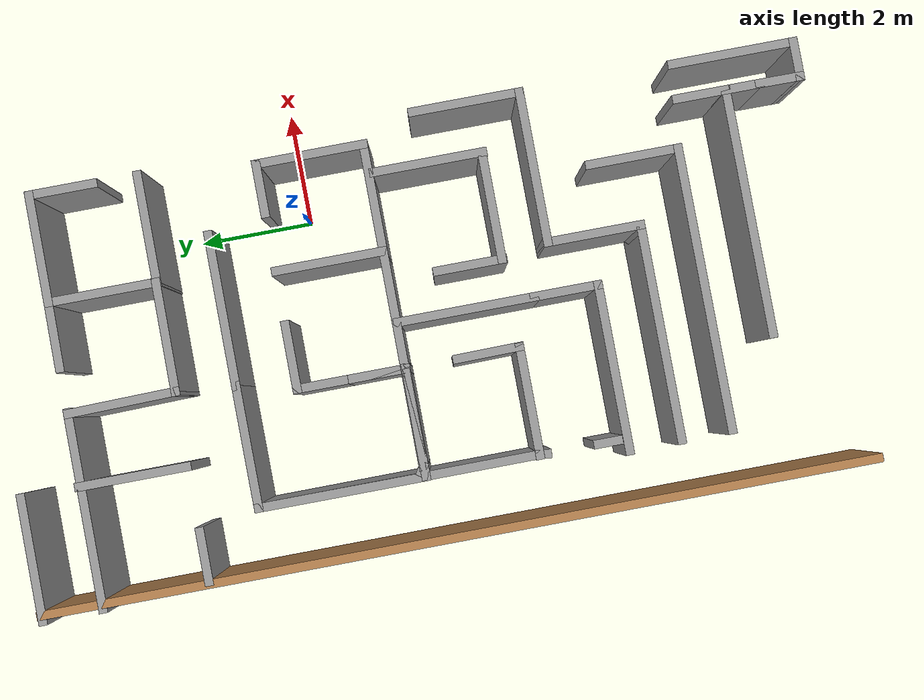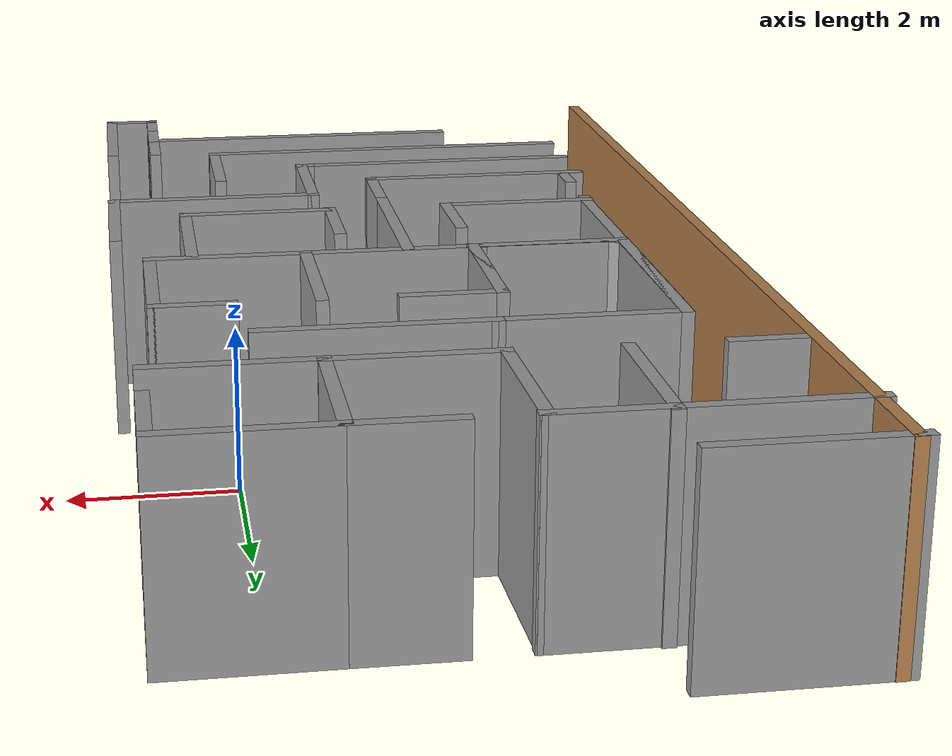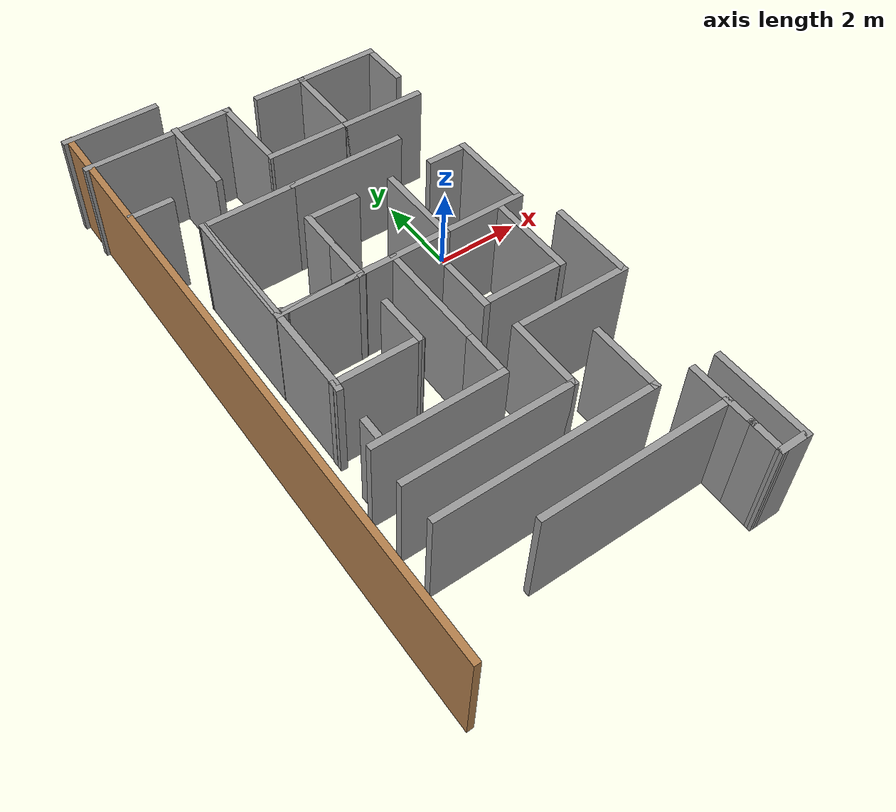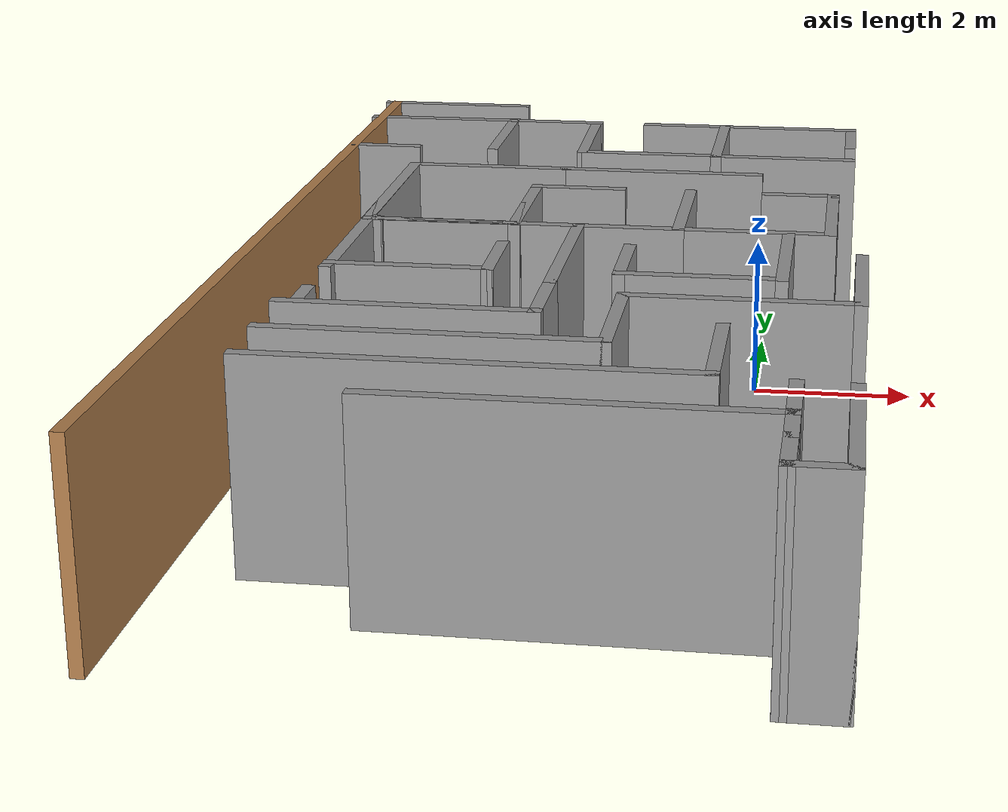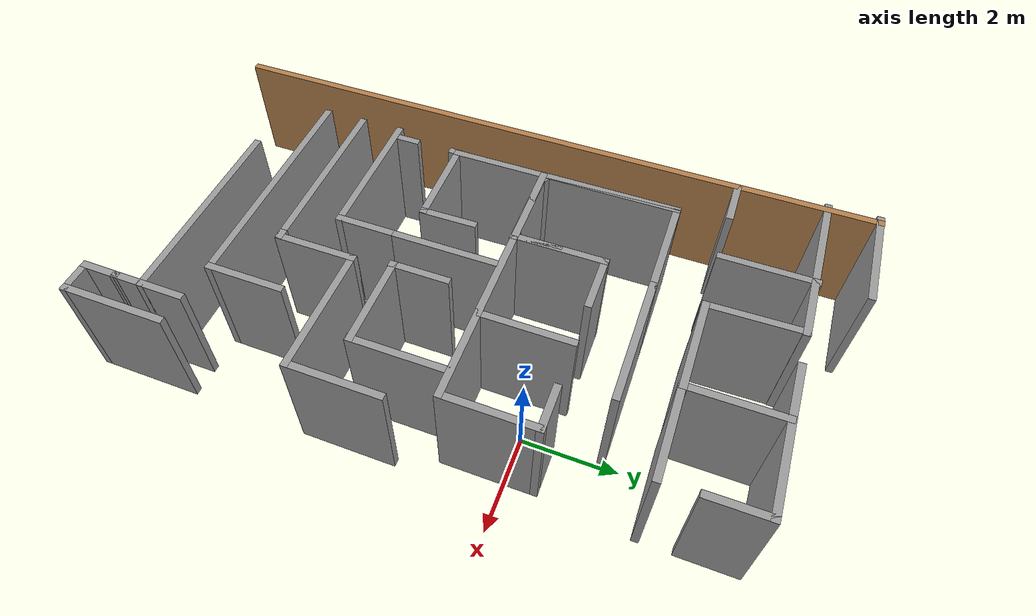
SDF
<sdf version="1.7">
 <model name="nidar1">
  <pose>1.48392 -1.60733 0 0 -0 0</pose>
  <link name="Wall_100">
   <collision name="Wall_100_Collision">
    <geometry><box><size>1.25 0.15 2.5</size></box></geometry>
    <pose>0 0 1.25 0 -0 0</pose>
   </collision>
   <visual name="Wall_100_Visual">
    <pose>0 0 1.25 0 -0 0</pose>
    <geometry><box><size>1.25 0.15 2.5</size></box></geometry>
    <material>
     <script><uri>file://media/materials/scripts/gazebo.material</uri><name>Gazebo/Grey</name></script>
     <ambient>1 1 1 1</ambient>
    </material>
    <meta><layer>0</layer></meta>
   </visual>
   <pose>-3.64531 -2.55736 0 0 -0 -1.5708</pose>
  </link>
  <link name="Wall_101">
   <collision name="Wall_101_Collision">
    <geometry><box><size>3 0.15 2.5</size></box></geometry>
    <pose>0 0 1.25 0 -0 0</pose>
   </collision>
   <visual name="Wall_101_Visual">
    <pose>0 0 1.25 0 -0 0</pose>
    <geometry><box><size>3 0.15 2.5</size></box></geometry>
    <material>
     <script><uri>file://media/materials/scripts/gazebo.material</uri><name>Gazebo/Grey</name></script>
     <ambient>1 1 1 1</ambient>
    </material>
    <meta><layer>0</layer></meta>
   </visual>
   <pose>-5.07031 -3.10737 0 0 -0 3.14159</pose>
  </link>
  <link name="Wall_104">
   <collision name="Wall_104_Collision">
    <geometry><box><size>2.75 0.15 2.5</size></box></geometry>
    <pose>0 0 1.25 0 -0 0</pose>
   </collision>
   <visual name="Wall_104_Visual">
    <pose>0 0 1.25 0 -0 0</pose>
    <geometry><box><size>2.75 0.15 2.5</size></box></geometry>
    <material>
     <script><uri>file://media/materials/scripts/gazebo.material</uri><name>Gazebo/Grey</name></script>
     <ambient>1 1 1 1</ambient>
    </material>
    <meta><layer>0</layer></meta>
   </visual>
   <pose>-2.90001 3.22586 0 0 -0 0</pose>
  </link>
  <link name="Wall_121">
   <collision name="Wall_121_Collision">
    <geometry><box><size>3.75 0.15 2.5</size></box></geometry>
    <pose>0 0 1.25 0 -0 0</pose>
   </collision>
   <visual name="Wall_121_Visual">
    <pose>0 0 1.25 0 -0 0</pose>
    <geometry><box><size>3.75 0.15 2.5</size></box></geometry>
    <material>
     <script><uri>file://media/materials/scripts/gazebo.material</uri><name>Gazebo/Grey</name></script>
     <ambient>1 1 1 1</ambient>
    </material>
    <meta><layer>0</layer></meta>
   </visual>
   <pose>-4.67849 -4.00366 0 0 -0 0</pose>
  </link>
  <link name="Wall_122">
   <collision name="Wall_122_Collision">
    <geometry><box><size>0.25 0.15 2.5</size></box></geometry>
    <pose>0 0 1.25 0 -0 0</pose>
   </collision>
   <visual name="Wall_122_Visual">
    <pose>0 0 1.25 0 -0 0</pose>
    <geometry><box><size>0.25 0.15 2.5</size></box></geometry>
    <material>
     <script><uri>file://media/materials/scripts/gazebo.material</uri><name>Gazebo/Grey</name></script>
     <ambient>1 1 1 1</ambient>
    </material>
    <meta><layer>0</layer></meta>
   </visual>
   <pose>-2.82849 -4.00366 0 0 -0 0</pose>
  </link>
  <link name="Wall_123">
   <collision name="Wall_123_Collision">
    <geometry><box><size>1.75 0.15 2.5</size></box></geometry>
    <pose>0 0 1.25 0 -0 0</pose>
   </collision>
   <visual name="Wall_123_Visual">
    <pose>0 0 1.25 0 -0 0</pose>
    <geometry><box><size>1.75 0.15 2.5</size></box></geometry>
    <material>
     <script><uri>file://media/materials/scripts/gazebo.material</uri><name>Gazebo/Grey</name></script>
     <ambient>1 1 1 1</ambient>
    </material>
    <meta><layer>0</layer></meta>
   </visual>
   <pose>-2.77849 -3.20366 0 0 -0 1.5708</pose>
  </link>
  <link name="Wall_124">
   <collision name="Wall_124_Collision">
    <geometry><box><size>2.75 0.15 2.5</size></box></geometry>
    <pose>0 0 1.25 0 -0 0</pose>
   </collision>
   <visual name="Wall_124_Visual">
    <pose>0 0 1.25 0 -0 0</pose>
    <geometry><box><size>2.75 0.15 2.5</size></box></geometry>
    <material>
     <script><uri>file://media/materials/scripts/gazebo.material</uri><name>Gazebo/Grey</name></script>
     <ambient>1 1 1 1</ambient>
    </material>
    <meta><layer>0</layer></meta>
   </visual>
   <pose>-1.47849 -2.40366 0 0 -0 0</pose>
  </link>
  <link name="Wall_125">
   <collision name="Wall_125_Collision">
    <geometry><box><size>2 0.15 2.5</size></box></geometry>
    <pose>0 0 1.25 0 -0 0</pose>
   </collision>
   <visual name="Wall_125_Visual">
    <pose>0 0 1.25 0 -0 0</pose>
    <geometry><box><size>2 0.15 2.5</size></box></geometry>
    <material>
     <script><uri>file://media/materials/scripts/gazebo.material</uri><name>Gazebo/Grey</name></script>
     <ambient>1 1 1 1</ambient>
    </material>
    <meta><layer>0</layer></meta>
   </visual>
   <pose>-0.178487 -1.47866 0 0 -0 1.5708</pose>
  </link>
  <link name="Wall_138">
   <collision name="Wall_138_Collision">
    <geometry><box><size>1.67818 0.15 2.5</size></box></geometry>
    <pose>0 0 1.25 0 -0 0</pose>
   </collision>
   <visual name="Wall_138_Visual">
    <pose>0 0 1.25 0 -0 0</pose>
    <geometry><box><size>1.67818 0.15 2.5</size></box></geometry>
    <material>
     <script><uri>file://media/materials/scripts/gazebo.material</uri><name>Gazebo/Grey</name></script>
     <ambient>1 1 1 1</ambient>
    </material>
    <meta><layer>0</layer></meta>
   </visual>
   <pose>-1.61601 -4.11057 0 0 -0 -1.5708</pose>
  </link>
  <link name="Wall_167">
   <collision name="Wall_167_Collision">
    <geometry><box><size>4.36304 0.15 2.5</size></box></geometry>
    <pose>0 0 1.25 0 -0 0</pose>
   </collision>
   <visual name="Wall_167_Visual">
    <pose>0 0 1.25 0 -0 0</pose>
    <geometry><box><size>4.36304 0.15 2.5</size></box></geometry>
    <material>
     <script><uri>file://media/materials/scripts/gazebo.material</uri><name>Gazebo/Grey</name></script>
     <ambient>1 1 1 1</ambient>
    </material>
    <meta><layer>0</layer></meta>
   </visual>
   <pose>-2.89355 -5.85839 0 0 -0 0</pose>
  </link>
  <link name="Wall_168">
   <collision name="Wall_168_Collision">
    <geometry><box><size>0.982772 0.15 2.5</size></box></geometry>
    <pose>0 0 1.25 0 -0 0</pose>
   </collision>
   <visual name="Wall_168_Visual">
    <pose>0 0 1.25 0 -0 0</pose>
    <geometry><box><size>0.982772 0.15 2.5</size></box></geometry>
    <material>
     <script><uri>file://media/materials/scripts/gazebo.material</uri><name>Gazebo/Grey</name></script>
     <ambient>1 1 1 1</ambient>
    </material>
    <meta><layer>0</layer></meta>
   </visual>
   <pose>-0.787026 -5.42451 0 0 -0 1.5708</pose>
  </link>
  <link name="Wall_175">
   <collision name="Wall_175_Collision">
    <geometry><box><size>5 0.15 2.5</size></box></geometry>
    <pose>0 0 1.25 0 -0 0</pose>
   </collision>
   <visual name="Wall_175_Visual">
    <pose>0 0 1.25 0 -0 0</pose>
    <geometry><box><size>5 0.15 2.5</size></box></geometry>
    <material>
     <script><uri>file://media/materials/scripts/gazebo.material</uri><name>Gazebo/Grey</name></script>
     <ambient>1 1 1 1</ambient>
    </material>
    <meta><layer>0</layer></meta>
   </visual>
   <pose>-4.04101 -4.87467 0 0 -0 3.14159</pose>
  </link>
  <link name="Wall_18">
   <collision name="Wall_18_Collision">
    <geometry><box><size>3.5 0.15 2.5</size></box></geometry>
    <pose>0 0 1.25 0 -0 0</pose>
   </collision>
   <visual name="Wall_18_Visual">
    <pose>0 0 1.25 0 -0 0</pose>
    <geometry><box><size>3.5 0.15 2.5</size></box></geometry>
    <material>
     <script><uri>file://media/materials/scripts/gazebo.material</uri><name>Gazebo/Grey</name></script>
     <ambient>1 1 1 1</ambient>
    </material>
    <meta><layer>0</layer></meta>
   </visual>
   <pose>-5.79576 6.09678 0 0 -0 0</pose>
  </link>
  <link name="Wall_181">
   <collision name="Wall_181_Collision">
    <geometry><box><size>0.75 0.15 2.5</size></box></geometry>
    <pose>0 0 1.25 0 -0 0</pose>
   </collision>
   <visual name="Wall_181_Visual">
    <pose>0 0 1.25 0 -0 0</pose>
    <geometry><box><size>0.75 0.15 2.5</size></box></geometry>
    <material>
     <script><uri>file://media/materials/scripts/gazebo.material</uri><name>Gazebo/Grey</name></script>
     <ambient>1 1 1 1</ambient>
    </material>
    <meta><layer>0</layer></meta>
   </visual>
   <pose>-0.787026 -6.1409 0 0 -0 -1.5708</pose>
  </link>
  <link name="Wall_19">
   <collision name="Wall_19_Collision">
    <geometry><box><size>2 0.15 2.5</size></box></geometry>
    <pose>0 0 1.25 0 -0 0</pose>
   </collision>
   <visual name="Wall_19_Visual">
    <pose>0 0 1.25 0 -0 0</pose>
    <geometry><box><size>2 0.15 2.5</size></box></geometry>
    <material>
     <script><uri>file://media/materials/scripts/gazebo.material</uri><name>Gazebo/Grey</name></script>
     <ambient>1 1 1 1</ambient>
    </material>
    <meta><layer>0</layer></meta>
   </visual>
   <pose>-4.12076 5.17178 0 0 -0 -1.55189</pose>
  </link>
  <link name="Wall_20">
   <collision name="Wall_20_Collision">
    <geometry><box><size>2.02788 0.15 2.5</size></box></geometry>
    <pose>0 0 1.25 0 -0 0</pose>
   </collision>
   <visual name="Wall_20_Visual">
    <pose>0 0 1.25 0 -0 0</pose>
    <geometry><box><size>2.02788 0.15 2.5</size></box></geometry>
    <material>
     <script><uri>file://media/materials/scripts/gazebo.material</uri><name>Gazebo/Grey</name></script>
     <ambient>1 1 1 1</ambient>
    </material>
    <meta><layer>0</layer></meta>
   </visual>
   <pose>-3.16469 4.24354 0 0 -0 -0.003456</pose>
  </link>
  <link name="Wall_201">
   <collision name="Wall_201_Collision">
    <geometry><box><size>2.25 0.15 2.5</size></box></geometry>
    <pose>0 0 1.25 0 -0 0</pose>
   </collision>
   <visual name="Wall_201_Visual">
    <pose>0 0 1.25 0 -0 0</pose>
    <geometry><box><size>2.25 0.15 2.5</size></box></geometry>
    <material>
     <script><uri>file://media/materials/scripts/gazebo.material</uri><name>Gazebo/Grey</name></script>
     <ambient>1 1 1 1</ambient>
    </material>
    <meta><layer>0</layer></meta>
   </visual>
   <pose>-0.191731 -6.09177 0 0 -0 -1.5708</pose>
  </link>
  <link name="Wall_202">
   <collision name="Wall_202_Collision">
    <geometry><box><size>0.75 0.15 2.5</size></box></geometry>
    <pose>0 0 1.25 0 -0 0</pose>
   </collision>
   <visual name="Wall_202_Visual">
    <pose>0 0 1.25 0 -0 0</pose>
    <geometry><box><size>0.75 0.15 2.5</size></box></geometry>
    <material>
     <script><uri>file://media/materials/scripts/gazebo.material</uri><name>Gazebo/Grey</name></script>
     <ambient>1 1 1 1</ambient>
    </material>
    <meta><layer>0</layer></meta>
   </visual>
   <pose>-0.491731 -7.14177 0 0 -0 3.14159</pose>
  </link>
  <link name="Wall_203">
   <collision name="Wall_203_Collision">
    <geometry><box><size>0.850882 0.15 2.5</size></box></geometry>
    <pose>0 0 1.25 0 -0 0</pose>
   </collision>
   <visual name="Wall_203_Visual">
    <pose>0 0 1.25 0 -0 0</pose>
    <geometry><box><size>0.850882 0.15 2.5</size></box></geometry>
    <material>
     <script><uri>file://media/materials/scripts/gazebo.material</uri><name>Gazebo/Grey</name></script>
     <ambient>1 1 1 1</ambient>
    </material>
    <meta><layer>0</layer></meta>
   </visual>
   <pose>-0.789378 -6.79133 0 0 -0 1.56408</pose>
  </link>
  <link name="Wall_21">
   <collision name="Wall_21_Collision">
    <geometry><box><size>2 0.15 2.5</size></box></geometry>
    <pose>0 0 1.25 0 -0 0</pose>
   </collision>
   <visual name="Wall_21_Visual">
    <pose>0 0 1.25 0 -0 0</pose>
    <geometry><box><size>2 0.15 2.5</size></box></geometry>
    <material>
     <script><uri>file://media/materials/scripts/gazebo.material</uri><name>Gazebo/Grey</name></script>
     <ambient>1 1 1 1</ambient>
    </material>
    <meta><layer>0</layer></meta>
   </visual>
   <pose>-2.22612 5.15009 0 0 -0 1.5708</pose>
  </link>
  <link name="Wall_22">
   <collision name="Wall_22_Collision">
    <geometry><box><size>1.27717 0.15 2.5</size></box></geometry>
    <pose>0 0 1.25 0 -0 0</pose>
   </collision>
   <visual name="Wall_22_Visual">
    <pose>0 0 1.25 0 -0 0</pose>
    <geometry><box><size>1.27717 0.15 2.5</size></box></geometry>
    <material>
     <script><uri>file://media/materials/scripts/gazebo.material</uri><name>Gazebo/Grey</name></script>
     <ambient>1 1 1 1</ambient>
    </material>
    <meta><layer>0</layer></meta>
   </visual>
   <pose>-2.78969 6.09354 0 0 -0 3.13584</pose>
  </link>
  <link name="Wall_25">
   <collision name="Wall_25_Collision">
    <geometry><box><size>2 0.15 2.5</size></box></geometry>
    <pose>0 0 1.25 0 -0 0</pose>
   </collision>
   <visual name="Wall_25_Visual">
    <pose>0 0 1.25 0 -0 0</pose>
    <geometry><box><size>2 0.15 2.5</size></box></geometry>
    <material>
     <script><uri>file://media/materials/scripts/gazebo.material</uri><name>Gazebo/Grey</name></script>
     <ambient>1 1 1 1</ambient>
    </material>
    <meta><layer>0</layer></meta>
   </visual>
   <pose>-1.30112 6.0903 0 0 -0 0</pose>
  </link>
  <link name="Wall_26">
   <collision name="Wall_26_Collision">
    <geometry><box><size>1.25 0.15 2.5</size></box></geometry>
    <pose>0 0 1.25 0 -0 0</pose>
   </collision>
   <visual name="Wall_26_Visual">
    <pose>0 0 1.25 0 -0 0</pose>
    <geometry><box><size>1.25 0.15 2.5</size></box></geometry>
    <material>
     <script><uri>file://media/materials/scripts/gazebo.material</uri><name>Gazebo/Grey</name></script>
     <ambient>1 1 1 1</ambient>
    </material>
    <meta><layer>0</layer></meta>
   </visual>
   <pose>-0.376115 5.5403 0 0 -0 -1.5708</pose>
  </link>
  <link name="Wall_28">
   <collision name="Wall_28_Collision">
    <geometry><box><size>2 0.15 2.5</size></box></geometry>
    <pose>0 0 1.25 0 -0 0</pose>
   </collision>
   <visual name="Wall_28_Visual">
    <pose>0 0 1.25 0 -0 0</pose>
    <geometry><box><size>2 0.15 2.5</size></box></geometry>
    <material>
     <script><uri>file://media/materials/scripts/gazebo.material</uri><name>Gazebo/Grey</name></script>
     <ambient>1 1 1 1</ambient>
    </material>
    <meta><layer>0</layer></meta>
   </visual>
   <pose>-1.30112 4.22509 0 0 -0 0</pose>
  </link>
  <link name="Wall_3">
   <collision name="Wall_3_Collision">
    <geometry><box><size>14.5 0.15 2.5</size></box></geometry>
    <pose>0 0 1.25 0 -0 0</pose>
   </collision>
   <visual name="Wall_3_Visual">
    <pose>0 0 1.25 0 -0 0</pose>
    <geometry><box><size>14.5 0.15 2.5</size></box></geometry>
    <material>
     <script><uri>file://media/materials/scripts/gazebo.material</uri><name>Gazebo/Wood</name></script>
     <ambient>1 1 1 1</ambient>
    </material>
    <meta><layer>0</layer></meta>
   </visual>
   <pose>-7.39338 -0.037008 0 0 -0 -1.5708</pose>
  </link>
  <link name="Wall_48">
   <collision name="Wall_48_Collision">
    <geometry><box><size>2.2402 0.15 2.5</size></box></geometry>
    <pose>0 0 1.25 0 -0 0</pose>
   </collision>
   <visual name="Wall_48_Visual">
    <pose>0 0 1.25 0 -0 0</pose>
    <geometry><box><size>2.2402 0.15 2.5</size></box></geometry>
    <material>
     <script><uri>file://media/materials/scripts/gazebo.material</uri><name>Gazebo/Grey</name></script>
     <ambient>1 1 1 1</ambient>
    </material>
    <meta><layer>0</layer></meta>
   </visual>
   <pose>-5.24511 3.22259 0 0 -0 -3.13847</pose>
  </link>
  <link name="Wall_51">
   <collision name="Wall_51_Collision">
    <geometry><box><size>1 0.15 2.5</size></box></geometry>
    <pose>0 0 1.25 0 -0 0</pose>
   </collision>
   <visual name="Wall_51_Visual">
    <pose>0 0 1.25 0 -0 0</pose>
    <geometry><box><size>1 0.15 2.5</size></box></geometry>
    <material>
     <script><uri>file://media/materials/scripts/gazebo.material</uri><name>Gazebo/Grey</name></script>
     <ambient>1 1 1 1</ambient>
    </material>
    <meta><layer>0</layer></meta>
   </visual>
   <pose>-6.92657 4.2635 0 0 -0 0</pose>
  </link>
  <link name="Wall_53">
   <collision name="Wall_53_Collision">
    <geometry><box><size>2 0.15 2.5</size></box></geometry>
    <pose>0 0 1.25 0 -0 0</pose>
   </collision>
   <visual name="Wall_53_Visual">
    <pose>0 0 1.25 0 -0 0</pose>
    <geometry><box><size>2 0.15 2.5</size></box></geometry>
    <material>
     <script><uri>file://media/materials/scripts/gazebo.material</uri><name>Gazebo/Grey</name></script>
     <ambient>1 1 1 1</ambient>
    </material>
    <meta><layer>0</layer></meta>
   </visual>
   <pose>-5.38321 5.207 0 0 -0 1.5708</pose>
  </link>
  <link name="Wall_62">
   <collision name="Wall_62_Collision">
    <geometry><box><size>4.97484 0.15 2.5</size></box></geometry>
    <pose>0 0 1.25 0 -0 0</pose>
   </collision>
   <visual name="Wall_62_Visual">
    <pose>0 0 1.25 0 -0 0</pose>
    <geometry><box><size>4.97484 0.15 2.5</size></box></geometry>
    <material>
     <script><uri>file://media/materials/scripts/gazebo.material</uri><name>Gazebo/Grey</name></script>
     <ambient>1 1 1 1</ambient>
    </material>
    <meta><layer>0</layer></meta>
   </visual>
   <pose>-6.28359 0.806907 0 0 -0 -1.56805</pose>
  </link>
  <link name="Wall_63">
   <collision name="Wall_63_Collision">
    <geometry><box><size>2 0.15 2.5</size></box></geometry>
    <pose>0 0 1.25 0 -0 0</pose>
   </collision>
   <visual name="Wall_63_Visual">
    <pose>0 0 1.25 0 -0 0</pose>
    <geometry><box><size>2 0.15 2.5</size></box></geometry>
    <material>
     <script><uri>file://media/materials/scripts/gazebo.material</uri><name>Gazebo/Grey</name></script>
     <ambient>1 1 1 1</ambient>
    </material>
    <meta><layer>0</layer></meta>
   </visual>
   <pose>-5.3652 -1.60551 0 0 -0 0</pose>
  </link>
  <link name="Wall_64">
   <collision name="Wall_64_Collision">
    <geometry><box><size>1.22491 0.15 2.5</size></box></geometry>
    <pose>0 0 1.25 0 -0 0</pose>
   </collision>
   <visual name="Wall_64_Visual">
    <pose>0 0 1.25 0 -0 0</pose>
    <geometry><box><size>1.22491 0.15 2.5</size></box></geometry>
    <material>
     <script><uri>file://media/materials/scripts/gazebo.material</uri><name>Gazebo/Grey</name></script>
     <ambient>1 1 1 1</ambient>
    </material>
    <meta><layer>0</layer></meta>
   </visual>
   <pose>-4.43359 -1.06809 0 0 -0 1.5831</pose>
  </link>
  <link name="Wall_66">
   <collision name="Wall_66_Collision">
    <geometry><box><size>1.75 0.15 2.5</size></box></geometry>
    <pose>0 0 1.25 0 -0 0</pose>
   </collision>
   <visual name="Wall_66_Visual">
    <pose>0 0 1.25 0 -0 0</pose>
    <geometry><box><size>1.75 0.15 2.5</size></box></geometry>
    <material>
     <script><uri>file://media/materials/scripts/gazebo.material</uri><name>Gazebo/Grey</name></script>
     <ambient>1 1 1 1</ambient>
    </material>
    <meta><layer>0</layer></meta>
   </visual>
   <pose>-5.31348 0.364029 0 0 -0 3.14159</pose>
  </link>
  <link name="Wall_67">
   <collision name="Wall_67_Collision">
    <geometry><box><size>0.25 0.15 2.5</size></box></geometry>
    <pose>0 0 1.25 0 -0 0</pose>
   </collision>
   <visual name="Wall_67_Visual">
    <pose>0 0 1.25 0 -0 0</pose>
    <geometry><box><size>0.25 0.15 2.5</size></box></geometry>
    <material>
     <script><uri>file://media/materials/scripts/gazebo.material</uri><name>Gazebo/Grey</name></script>
     <ambient>1 1 1 1</ambient>
    </material>
    <meta><layer>0</layer></meta>
   </visual>
   <pose>-6.15678 0.389029 0 0 -0 2.61799</pose>
  </link>
  <link name="Wall_69">
   <collision name="Wall_69_Collision">
    <geometry><box><size>3.01994 0.15 2.5</size></box></geometry>
    <pose>0 0 1.25 0 -0 0</pose>
   </collision>
   <visual name="Wall_69_Visual">
    <pose>0 0 1.25 0 -0 0</pose>
    <geometry><box><size>3.01994 0.15 2.5</size></box></geometry>
    <material>
     <script><uri>file://media/materials/scripts/gazebo.material</uri><name>Gazebo/Grey</name></script>
     <ambient>1 1 1 1</ambient>
    </material>
    <meta><layer>0</layer></meta>
   </visual>
   <pose>-6.2902 1.78459 0 0 -0 -1.5708</pose>
  </link>
  <link name="Wall_70">
   <collision name="Wall_70_Collision">
    <geometry><box><size>2 0.15 2.5</size></box></geometry>
    <pose>0 0 1.25 0 -0 0</pose>
   </collision>
   <visual name="Wall_70_Visual">
    <pose>0 0 1.25 0 -0 0</pose>
    <geometry><box><size>2 0.15 2.5</size></box></geometry>
    <material>
     <script><uri>file://media/materials/scripts/gazebo.material</uri><name>Gazebo/Grey</name></script>
     <ambient>1 1 1 1</ambient>
    </material>
    <meta><layer>0</layer></meta>
   </visual>
   <pose>-5.35198 0.349863 0 0 -0 0</pose>
  </link>
  <link name="Wall_71">
   <collision name="Wall_71_Collision">
    <geometry><box><size>2.0202 0.15 2.5</size></box></geometry>
    <pose>0 0 1.25 0 -0 0</pose>
   </collision>
   <visual name="Wall_71_Visual">
    <pose>0 0 1.25 0 -0 0</pose>
    <geometry><box><size>2.0202 0.15 2.5</size></box></geometry>
    <material>
     <script><uri>file://media/materials/scripts/gazebo.material</uri><name>Gazebo/Grey</name></script>
     <ambient>1 1 1 1</ambient>
    </material>
    <meta><layer>0</layer></meta>
   </visual>
   <pose>-4.4402 1.28459 0 0 -0 1.5708</pose>
  </link>
  <link name="Wall_72">
   <collision name="Wall_72_Collision">
    <geometry><box><size>1.25 0.15 2.5</size></box></geometry>
    <pose>0 0 1.25 0 -0 0</pose>
   </collision>
   <visual name="Wall_72_Visual">
    <pose>0 0 1.25 0 -0 0</pose>
    <geometry><box><size>1.25 0.15 2.5</size></box></geometry>
    <material>
     <script><uri>file://media/materials/scripts/gazebo.material</uri><name>Gazebo/Grey</name></script>
     <ambient>1 1 1 1</ambient>
    </material>
    <meta><layer>0</layer></meta>
   </visual>
   <pose>-3.8902 2.21932 0 0 -0 0</pose>
  </link>
  <link name="Wall_74">
   <collision name="Wall_74_Collision">
    <geometry><box><size>2.25 0.15 2.5</size></box></geometry>
    <pose>0 0 1.25 0 -0 0</pose>
   </collision>
   <visual name="Wall_74_Visual">
    <pose>0 0 1.25 0 -0 0</pose>
    <geometry><box><size>2.25 0.15 2.5</size></box></geometry>
    <material>
     <script><uri>file://media/materials/scripts/gazebo.material</uri><name>Gazebo/Grey</name></script>
     <ambient>1 1 1 1</ambient>
    </material>
    <meta><layer>0</layer></meta>
   </visual>
   <pose>-3.46348 0.364029 0 0 -0 0</pose>
  </link>
  <link name="Wall_75">
   <collision name="Wall_75_Collision">
    <geometry><box><size>2 0.15 2.5</size></box></geometry>
    <pose>0 0 1.25 0 -0 0</pose>
   </collision>
   <visual name="Wall_75_Visual">
    <pose>0 0 1.25 0 -0 0</pose>
    <geometry><box><size>2 0.15 2.5</size></box></geometry>
    <material>
     <script><uri>file://media/materials/scripts/gazebo.material</uri><name>Gazebo/Grey</name></script>
     <ambient>1 1 1 1</ambient>
    </material>
    <meta><layer>0</layer></meta>
   </visual>
   <pose>-2.41348 1.28903 0 0 -0 1.5708</pose>
  </link>
  <link name="Wall_77">
   <collision name="Wall_77_Collision">
    <geometry><box><size>1.06955 0.15 2.5</size></box></geometry>
    <pose>0 0 1.25 0 -0 0</pose>
   </collision>
   <visual name="Wall_77_Visual">
    <pose>0 0 1.25 0 -0 0</pose>
    <geometry><box><size>1.06955 0.15 2.5</size></box></geometry>
    <material>
     <script><uri>file://media/materials/scripts/gazebo.material</uri><name>Gazebo/Grey</name></script>
     <ambient>1 1 1 1</ambient>
    </material>
    <meta><layer>0</layer></meta>
   </visual>
   <pose>-4.4402 0.809591 0 0 -0 1.5708</pose>
  </link>
  <link name="Wall_81">
   <collision name="Wall_81_Collision">
    <geometry><box><size>2.5 0.15 2.5</size></box></geometry>
    <pose>0 0 1.25 0 -0 0</pose>
   </collision>
   <visual name="Wall_81_Visual">
    <pose>0 0 1.25 0 -0 0</pose>
    <geometry><box><size>2.5 0.15 2.5</size></box></geometry>
    <material>
     <script><uri>file://media/materials/scripts/gazebo.material</uri><name>Gazebo/Grey</name></script>
     <ambient>1 1 1 1</ambient>
    </material>
    <meta><layer>0</layer></meta>
   </visual>
   <pose>-3.64531 -0.832365 0 0 -0 -1.5708</pose>
  </link>
  <link name="Wall_84">
   <collision name="Wall_84_Collision">
    <geometry><box><size>2 0.15 2.5</size></box></geometry>
    <pose>0 0 1.25 0 -0 0</pose>
   </collision>
   <visual name="Wall_84_Visual">
    <pose>0 0 1.25 0 -0 0</pose>
    <geometry><box><size>2 0.15 2.5</size></box></geometry>
    <material>
     <script><uri>file://media/materials/scripts/gazebo.material</uri><name>Gazebo/Grey</name></script>
     <ambient>1 1 1 1</ambient>
    </material>
    <meta><layer>0</layer></meta>
   </visual>
   <pose>-1.48848 0.364029 0 0 -0 0</pose>
  </link>
  <link name="Wall_85">
   <collision name="Wall_85_Collision">
    <geometry><box><size>2 0.15 2.5</size></box></geometry>
    <pose>0 0 1.25 0 -0 0</pose>
   </collision>
   <visual name="Wall_85_Visual">
    <pose>0 0 1.25 0 -0 0</pose>
    <geometry><box><size>2 0.15 2.5</size></box></geometry>
    <material>
     <script><uri>file://media/materials/scripts/gazebo.material</uri><name>Gazebo/Grey</name></script>
     <ambient>1 1 1 1</ambient>
    </material>
    <meta><layer>0</layer></meta>
   </visual>
   <pose>-0.563478 1.28903 0 0 -0 1.5708</pose>
  </link>
  <link name="Wall_86">
   <collision name="Wall_86_Collision">
    <geometry><box><size>1 0.15 2.5</size></box></geometry>
    <pose>0 0 1.25 0 -0 0</pose>
   </collision>
   <visual name="Wall_86_Visual">
    <pose>0 0 1.25 0 -0 0</pose>
    <geometry><box><size>1 0.15 2.5</size></box></geometry>
    <material>
     <script><uri>file://media/materials/scripts/gazebo.material</uri><name>Gazebo/Grey</name></script>
     <ambient>1 1 1 1</ambient>
    </material>
    <meta><layer>0</layer></meta>
   </visual>
   <pose>-0.988478 2.21403 0 0 -0 3.14159</pose>
  </link>
  <link name="Wall_88">
   <collision name="Wall_88_Collision">
    <geometry><box><size>1.27772 0.15 2.5</size></box></geometry>
    <pose>0 0 1.25 0 -0 0</pose>
   </collision>
   <visual name="Wall_88_Visual">
    <pose>0 0 1.25 0 -0 0</pose>
    <geometry><box><size>1.27772 0.15 2.5</size></box></geometry>
    <material>
     <script><uri>file://media/materials/scripts/gazebo.material</uri><name>Gazebo/Grey</name></script>
     <ambient>1 1 1 1</ambient>
    </material>
    <meta><layer>0</layer></meta>
   </visual>
   <pose>-2.91646 -1.03808 0 0 -0 -1.5708</pose>
  </link>
  <link name="Wall_89">
   <collision name="Wall_89_Collision">
    <geometry><box><size>2 0.15 2.5</size></box></geometry>
    <pose>0 0 1.25 0 -0 0</pose>
   </collision>
   <visual name="Wall_89_Visual">
    <pose>0 0 1.25 0 -0 0</pose>
    <geometry><box><size>2 0.15 2.5</size></box></geometry>
    <material>
     <script><uri>file://media/materials/scripts/gazebo.material</uri><name>Gazebo/Grey</name></script>
     <ambient>1 1 1 1</ambient>
    </material>
    <meta><layer>0</layer></meta>
   </visual>
   <pose>-1.99146 -1.58871 0 0 -0 0</pose>
  </link>
  <link name="Wall_90">
   <collision name="Wall_90_Collision">
    <geometry><box><size>2.02773 0.15 2.5</size></box></geometry>
    <pose>0 0 1.25 0 -0 0</pose>
   </collision>
   <visual name="Wall_90_Visual">
    <pose>0 0 1.25 0 -0 0</pose>
    <geometry><box><size>2.02773 0.15 2.5</size></box></geometry>
    <material>
     <script><uri>file://media/materials/scripts/gazebo.material</uri><name>Gazebo/Grey</name></script>
     <ambient>1 1 1 1</ambient>
    </material>
    <meta><layer>0</layer></meta>
   </visual>
   <pose>-1.06646 -0.663076 0 0 -0 1.5708</pose>
  </link>
  <link name="Wall_96">
   <collision name="Wall_96_Collision">
    <geometry><box><size>0.275872 0.15 2.5</size></box></geometry>
    <pose>0 0 1.25 0 -0 0</pose>
   </collision>
   <visual name="Wall_96_Visual">
    <pose>0 0 1.25 0 -0 0</pose>
    <geometry><box><size>0.275872 0.15 2.5</size></box></geometry>
    <material>
     <script><uri>file://media/materials/scripts/gazebo.material</uri><name>Gazebo/Grey</name></script>
     <ambient>1 1 1 1</ambient>
    </material>
    <meta><layer>0</layer></meta>
   </visual>
   <pose>-6.28359 -1.66809 0 0 -0 -1.67606</pose>
  </link>
  <link name="Wall_98">
   <collision name="Wall_98_Collision">
    <geometry><box><size>0.5 0.15 2.5</size></box></geometry>
    <pose>0 0 1.25 0 -0 0</pose>
   </collision>
   <visual name="Wall_98_Visual">
    <pose>0 0 1.25 0 -0 0</pose>
    <geometry><box><size>0.5 0.15 2.5</size></box></geometry>
    <material>
     <script><uri>file://media/materials/scripts/gazebo.material</uri><name>Gazebo/Grey</name></script>
     <ambient>1 1 1 1</ambient>
    </material>
    <meta><layer>0</layer></meta>
   </visual>
   <pose>-6.28798 -2.77836 0 0 -0 -1.5708</pose>
  </link>
  <pose>-0.346211 0.278962 0 0 -0 0</pose>
  <link name="Wall_23">
   <collision name="Wall_23_Collision">
    <geometry><box><size>2.25 0.15 2.5</size></box></geometry>
    <pose>0 0 1.25 0 -0 0</pose>
   </collision>
   <visual name="Wall_23_Visual">
    <pose>0 0 1.25 0 -0 0</pose>
    <geometry><box><size>2.25 0.15 2.5</size></box></geometry>
    <material>
     <script><uri>file://media/materials/scripts/gazebo.material</uri><name>Gazebo/Grey</name></script>
     <ambient>1 1 1 1</ambient>
    </material>
    <meta><layer>0</layer></meta>
   </visual>
   <pose>-6.4393 7.12734 0 0 -0 0</pose>
  </link>
  <static>1</static>
 </model>
</sdf>
